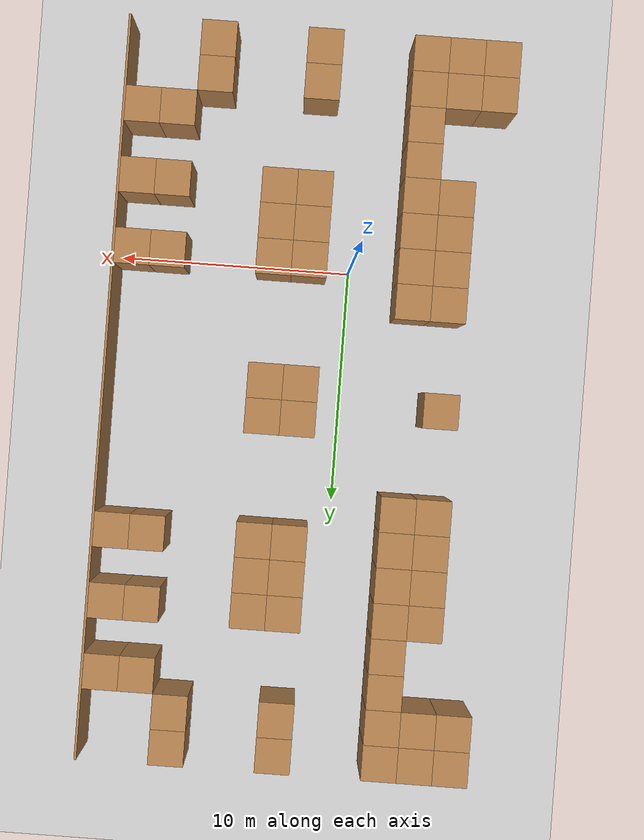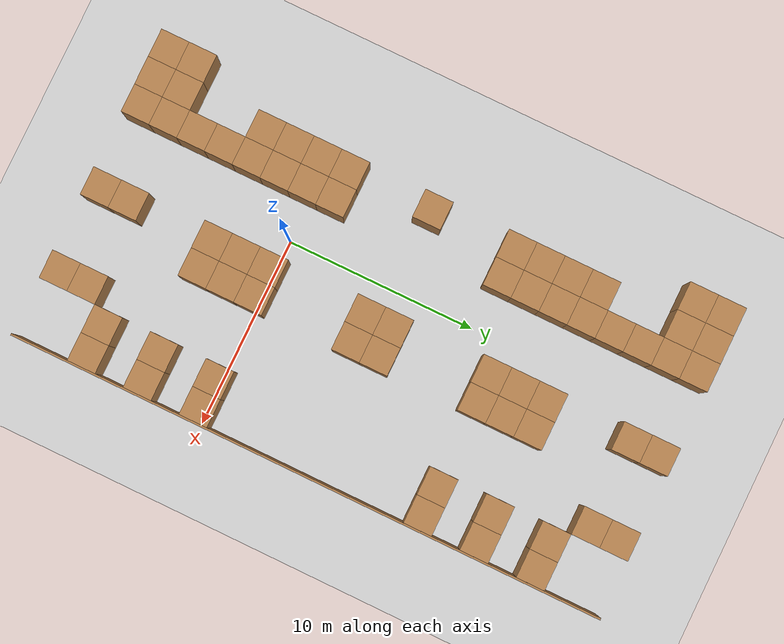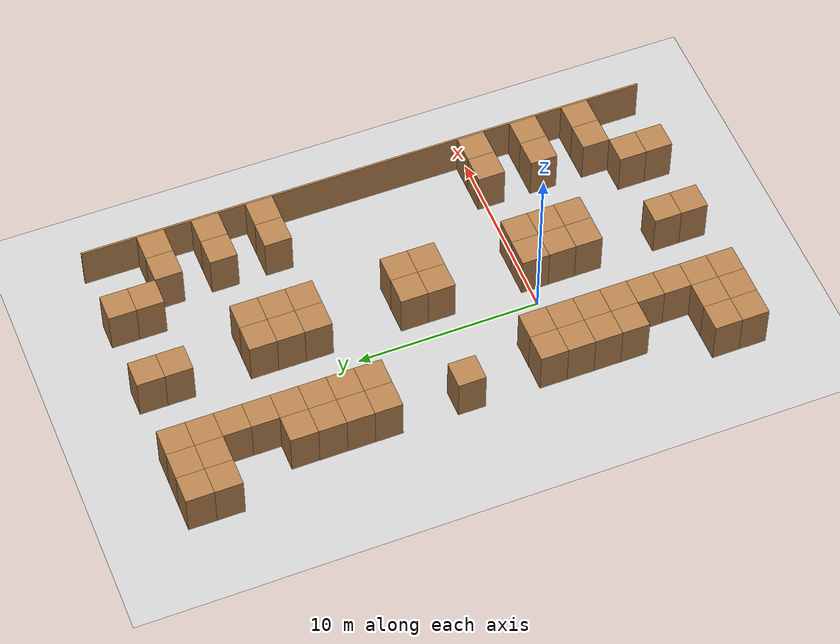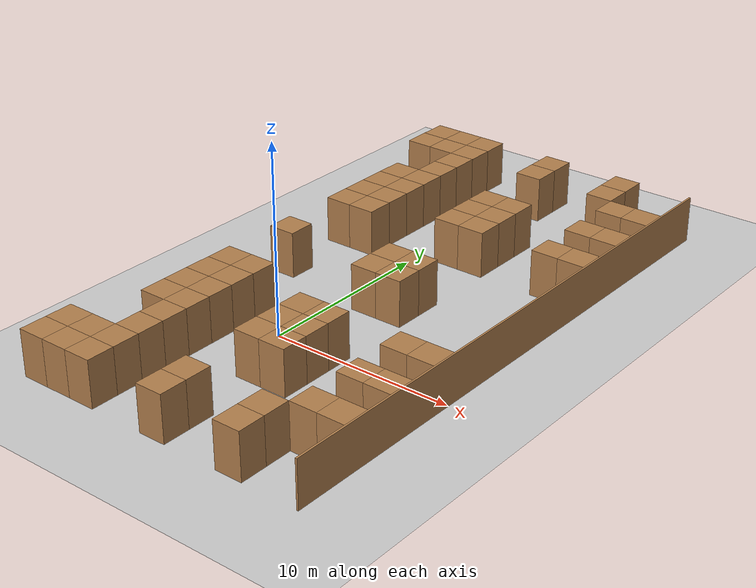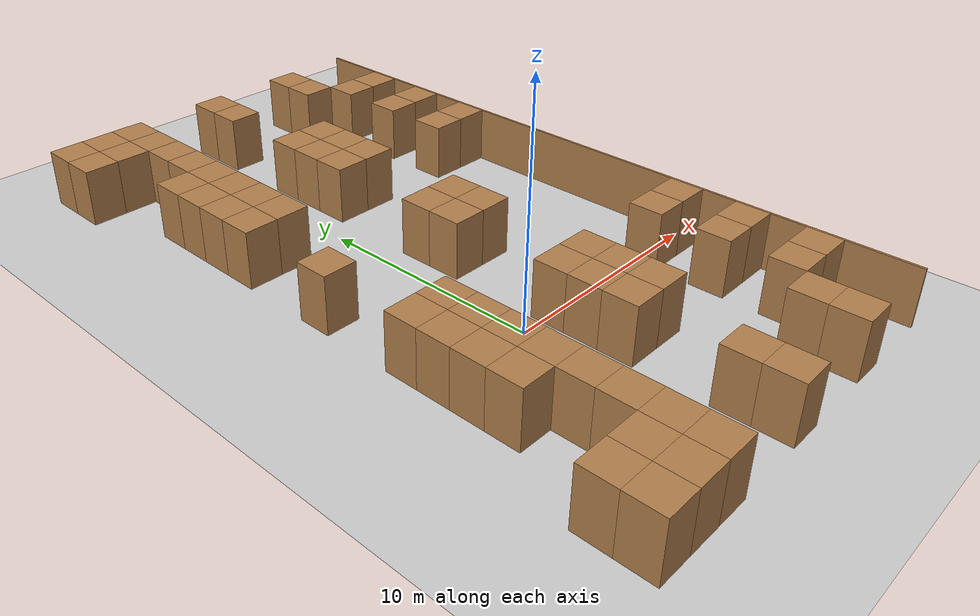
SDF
<sdf version="1.6">
 <world name="default">
  <model name="ground_plane">
   <static>1</static>
   <link name="link">
    <collision name="collision">
     <geometry><plane><normal>0 0 1</normal><size>100 100</size></plane></geometry>
     <surface><friction><ode><mu>100</mu><mu2>50</mu2></ode></friction></surface>
    </collision>
    <visual name="visual">
     <cast_shadows>0</cast_shadows>
     <geometry><plane><normal>0 0 1</normal><size>100 100</size></plane></geometry>
     <material>
      <script><uri>file://media/materials/scripts/gazebo.material</uri><name>Gazebo/Grey</name></script>
     </material>
    </visual>
   </link>
  </model>
  <model name="wall_1.5_1.5_clone_clone">
   <pose>6.25 -7.75 0 0 -0 0</pose>
   <link name="Wall_2">
    <collision name="Wall_2_Collision">
     <geometry><box><size>1.5 1.5 2.5</size></box></geometry>
     <pose>0 0 1.25 0 -0 0</pose>
    </collision>
    <visual name="Wall_2_Visual">
     <pose>0 0 1.25 0 -0 0</pose>
     <geometry><box><size>1.5 1.5 2.5</size></box></geometry>
     <material>
      <script><uri>file://media/materials/scripts/gazebo.material</uri><name>Gazebo/Wood</name></script>
      <ambient>1 1 1 1</ambient>
     </material>
    </visual>
   </link>
   <static>1</static>
  </model>
  <model name="wall_1.5_1.5_clone_clone_0">
   <pose>6.25 -9.25 0 0 -0 0</pose>
   <link name="Wall_2">
    <collision name="Wall_2_Collision">
     <geometry><box><size>1.5 1.5 2.5</size></box></geometry>
     <pose>0 0 1.25 0 -0 0</pose>
    </collision>
    <visual name="Wall_2_Visual">
     <pose>0 0 1.25 0 -0 0</pose>
     <geometry><box><size>1.5 1.5 2.5</size></box></geometry>
     <material>
      <script><uri>file://media/materials/scripts/gazebo.material</uri><name>Gazebo/Wood</name></script>
      <ambient>1 1 1 1</ambient>
     </material>
    </visual>
   </link>
   <static>1</static>
  </model>
  <model name="wall_1.5_1.5_clone_clone_1">
   <pose>7.75 -6.25 0 0 -0 0</pose>
   <link name="Wall_2">
    <collision name="Wall_2_Collision">
     <geometry><box><size>1.5 1.5 2.5</size></box></geometry>
     <pose>0 0 1.25 0 -0 0</pose>
    </collision>
    <visual name="Wall_2_Visual">
     <pose>0 0 1.25 0 -0 0</pose>
     <geometry><box><size>1.5 1.5 2.5</size></box></geometry>
     <material>
      <script><uri>file://media/materials/scripts/gazebo.material</uri><name>Gazebo/Wood</name></script>
      <ambient>1 1 1 1</ambient>
     </material>
    </visual>
   </link>
   <static>1</static>
  </model>
  <model name="wall_1.5_1.5_clone_clone_2">
   <pose>9.25 -6.25 0 0 -0 0</pose>
   <link name="Wall_2">
    <collision name="Wall_2_Collision">
     <geometry><box><size>1.5 1.5 2.5</size></box></geometry>
     <pose>0 0 1.25 0 -0 0</pose>
    </collision>
    <visual name="Wall_2_Visual">
     <pose>0 0 1.25 0 -0 0</pose>
     <geometry><box><size>1.5 1.5 2.5</size></box></geometry>
     <material>
      <script><uri>file://media/materials/scripts/gazebo.material</uri><name>Gazebo/Wood</name></script>
      <ambient>1 1 1 1</ambient>
     </material>
    </visual>
   </link>
   <static>1</static>
  </model>
  <model name="wall_1.5_1.5_0">
   <pose>9.25 -3.25 0 0 -0 0</pose>
   <link name="Wall_2">
    <collision name="Wall_2_Collision">
     <geometry><box><size>1.5 1.5 2.5</size></box></geometry>
     <pose>0 0 1.25 0 -0 0</pose>
    </collision>
    <visual name="Wall_2_Visual">
     <pose>0 0 1.25 0 -0 0</pose>
     <geometry><box><size>1.5 1.5 2.5</size></box></geometry>
     <material>
      <script><uri>file://media/materials/scripts/gazebo.material</uri><name>Gazebo/Wood</name></script>
      <ambient>1 1 1 1</ambient>
     </material>
    </visual>
   </link>
   <static>1</static>
  </model>
  <model name="wall_1.5_1.5_0_clone">
   <pose>7.75 -3.25 0 0 -0 0</pose>
   <link name="Wall_2">
    <collision name="Wall_2_Collision">
     <geometry><box><size>1.5 1.5 2.5</size></box></geometry>
     <pose>0 0 1.25 0 -0 0</pose>
    </collision>
    <visual name="Wall_2_Visual">
     <pose>0 0 1.25 0 -0 0</pose>
     <geometry><box><size>1.5 1.5 2.5</size></box></geometry>
     <material>
      <script><uri>file://media/materials/scripts/gazebo.material</uri><name>Gazebo/Wood</name></script>
      <ambient>1 1 1 1</ambient>
     </material>
    </visual>
   </link>
   <static>1</static>
  </model>
  <model name="wall_1.5_1.5_1">
   <pose>9.25 -0.25 0 0 -0 0</pose>
   <link name="Wall_2">
    <collision name="Wall_2_Collision">
     <geometry><box><size>1.5 1.5 2.5</size></box></geometry>
     <pose>0 0 1.25 0 -0 0</pose>
    </collision>
    <visual name="Wall_2_Visual">
     <pose>0 0 1.25 0 -0 0</pose>
     <geometry><box><size>1.5 1.5 2.5</size></box></geometry>
     <material>
      <script><uri>file://media/materials/scripts/gazebo.material</uri><name>Gazebo/Wood</name></script>
      <ambient>1 1 1 1</ambient>
     </material>
    </visual>
   </link>
   <static>1</static>
  </model>
  <model name="wall_1.5_1.5_1_clone">
   <pose>7.75 -0.25 0 0 -0 0</pose>
   <link name="Wall_2">
    <collision name="Wall_2_Collision">
     <geometry><box><size>1.5 1.5 2.5</size></box></geometry>
     <pose>0 0 1.25 0 -0 0</pose>
    </collision>
    <visual name="Wall_2_Visual">
     <pose>0 0 1.25 0 -0 0</pose>
     <geometry><box><size>1.5 1.5 2.5</size></box></geometry>
     <material>
      <script><uri>file://media/materials/scripts/gazebo.material</uri><name>Gazebo/Wood</name></script>
      <ambient>1 1 1 1</ambient>
     </material>
    </visual>
   </link>
   <static>1</static>
  </model>
  <model name="wall_1.5_1.5_1_clone_clone">
   <pose>9.25 11.75 0 0 -0 0</pose>
   <link name="Wall_2">
    <collision name="Wall_2_Collision">
     <geometry><box><size>1.5 1.5 2.5</size></box></geometry>
     <pose>0 0 1.25 0 -0 0</pose>
    </collision>
    <visual name="Wall_2_Visual">
     <pose>0 0 1.25 0 -0 0</pose>
     <geometry><box><size>1.5 1.5 2.5</size></box></geometry>
     <material>
      <script><uri>file://media/materials/scripts/gazebo.material</uri><name>Gazebo/Wood</name></script>
      <ambient>1 1 1 1</ambient>
     </material>
    </visual>
   </link>
   <static>1</static>
  </model>
  <model name="wall_1.5_1.5_1_clone_clone_clone">
   <pose>7.75 11.75 0 0 -0 0</pose>
   <link name="Wall_2">
    <collision name="Wall_2_Collision">
     <geometry><box><size>1.5 1.5 2.5</size></box></geometry>
     <pose>0 0 1.25 0 -0 0</pose>
    </collision>
    <visual name="Wall_2_Visual">
     <pose>0 0 1.25 0 -0 0</pose>
     <geometry><box><size>1.5 1.5 2.5</size></box></geometry>
     <material>
      <script><uri>file://media/materials/scripts/gazebo.material</uri><name>Gazebo/Wood</name></script>
      <ambient>1 1 1 1</ambient>
     </material>
    </visual>
   </link>
   <static>1</static>
  </model>
  <model name="wall_1.5_1.5_1_clone_clone_clone_0">
   <pose>9.25 14.75 0 0 -0 0</pose>
   <link name="Wall_2">
    <collision name="Wall_2_Collision">
     <geometry><box><size>1.5 1.5 2.5</size></box></geometry>
     <pose>0 0 1.25 0 -0 0</pose>
    </collision>
    <visual name="Wall_2_Visual">
     <pose>0 0 1.25 0 -0 0</pose>
     <geometry><box><size>1.5 1.5 2.5</size></box></geometry>
     <material>
      <script><uri>file://media/materials/scripts/gazebo.material</uri><name>Gazebo/Wood</name></script>
      <ambient>1 1 1 1</ambient>
     </material>
    </visual>
   </link>
   <static>1</static>
  </model>
  <model name="wall_1.5_1.5_1_clone_clone_clone_1">
   <pose>7.75 14.75 0 0 -0 0</pose>
   <link name="Wall_2">
    <collision name="Wall_2_Collision">
     <geometry><box><size>1.5 1.5 2.5</size></box></geometry>
     <pose>0 0 1.25 0 -0 0</pose>
    </collision>
    <visual name="Wall_2_Visual">
     <pose>0 0 1.25 0 -0 0</pose>
     <geometry><box><size>1.5 1.5 2.5</size></box></geometry>
     <material>
      <script><uri>file://media/materials/scripts/gazebo.material</uri><name>Gazebo/Wood</name></script>
      <ambient>1 1 1 1</ambient>
     </material>
    </visual>
   </link>
   <static>1</static>
  </model>
  <model name="wall_1.5_1.5_1_clone_clone_clone_0_clone">
   <pose>9.25 17.75 0 0 -0 0</pose>
   <link name="Wall_2">
    <collision name="Wall_2_Collision">
     <geometry><box><size>1.5 1.5 2.5</size></box></geometry>
     <pose>0 0 1.25 0 -0 0</pose>
    </collision>
    <visual name="Wall_2_Visual">
     <pose>0 0 1.25 0 -0 0</pose>
     <geometry><box><size>1.5 1.5 2.5</size></box></geometry>
     <material>
      <script><uri>file://media/materials/scripts/gazebo.material</uri><name>Gazebo/Wood</name></script>
      <ambient>1 1 1 1</ambient>
     </material>
    </visual>
   </link>
   <static>1</static>
  </model>
  <model name="wall_1.5_1.5_1_clone_clone_clone_0_clone_0">
   <pose>7.75 17.75 0 0 -0 0</pose>
   <link name="Wall_2">
    <collision name="Wall_2_Collision">
     <geometry><box><size>1.5 1.5 2.5</size></box></geometry>
     <pose>0 0 1.25 0 -0 0</pose>
    </collision>
    <visual name="Wall_2_Visual">
     <pose>0 0 1.25 0 -0 0</pose>
     <geometry><box><size>1.5 1.5 2.5</size></box></geometry>
     <material>
      <script><uri>file://media/materials/scripts/gazebo.material</uri><name>Gazebo/Wood</name></script>
      <ambient>1 1 1 1</ambient>
     </material>
    </visual>
   </link>
   <static>1</static>
  </model>
  <model name="wall_1.5_1.5_1_clone_clone_clone_0_clone_0_clone">
   <pose>6.25 19.25 0 0 -0 0</pose>
   <link name="Wall_2">
    <collision name="Wall_2_Collision">
     <geometry><box><size>1.5 1.5 2.5</size></box></geometry>
     <pose>0 0 1.25 0 -0 0</pose>
    </collision>
    <visual name="Wall_2_Visual">
     <pose>0 0 1.25 0 -0 0</pose>
     <geometry><box><size>1.5 1.5 2.5</size></box></geometry>
     <material>
      <script><uri>file://media/materials/scripts/gazebo.material</uri><name>Gazebo/Wood</name></script>
      <ambient>1 1 1 1</ambient>
     </material>
    </visual>
   </link>
   <static>1</static>
  </model>
  <model name="wall_1.5_1.5_1_clone_clone_clone_0_clone_0_clone_0">
   <pose>6.25 20.75 0 0 -0 0</pose>
   <link name="Wall_2">
    <collision name="Wall_2_Collision">
     <geometry><box><size>1.5 1.5 2.5</size></box></geometry>
     <pose>0 0 1.25 0 -0 0</pose>
    </collision>
    <visual name="Wall_2_Visual">
     <pose>0 0 1.25 0 -0 0</pose>
     <geometry><box><size>1.5 1.5 2.5</size></box></geometry>
     <material>
      <script><uri>file://media/materials/scripts/gazebo.material</uri><name>Gazebo/Wood</name></script>
      <ambient>1 1 1 1</ambient>
     </material>
    </visual>
   </link>
   <static>1</static>
  </model>
  <model name="wall_1.5_1.5_clone_clone_clone">
   <pose>3.25 -3.25 0 0 -0 0</pose>
   <link name="Wall_2">
    <collision name="Wall_2_Collision">
     <geometry><box><size>1.5 1.5 2.5</size></box></geometry>
     <pose>0 0 1.25 0 -0 0</pose>
    </collision>
    <visual name="Wall_2_Visual">
     <pose>0 0 1.25 0 -0 0</pose>
     <geometry><box><size>1.5 1.5 2.5</size></box></geometry>
     <material>
      <script><uri>file://media/materials/scripts/gazebo.material</uri><name>Gazebo/Wood</name></script>
      <ambient>1 1 1 1</ambient>
     </material>
    </visual>
   </link>
   <static>1</static>
  </model>
  <model name="wall_1.5_1.5_clone_clone_clone_clone">
   <pose>3.25 -1.75 0 0 -0 0</pose>
   <link name="Wall_2">
    <collision name="Wall_2_Collision">
     <geometry><box><size>1.5 1.5 2.5</size></box></geometry>
     <pose>0 0 1.25 0 -0 0</pose>
    </collision>
    <visual name="Wall_2_Visual">
     <pose>0 0 1.25 0 -0 0</pose>
     <geometry><box><size>1.5 1.5 2.5</size></box></geometry>
     <material>
      <script><uri>file://media/materials/scripts/gazebo.material</uri><name>Gazebo/Wood</name></script>
      <ambient>1 1 1 1</ambient>
     </material>
    </visual>
   </link>
   <static>1</static>
  </model>
  <model name="wall_1.5_1.5_clone_clone_clone_clone_clone">
   <pose>1.75 -0.25 0 0 -0 0</pose>
   <link name="Wall_2">
    <collision name="Wall_2_Collision">
     <geometry><box><size>1.5 1.5 2.5</size></box></geometry>
     <pose>0 0 1.25 0 -0 0</pose>
    </collision>
    <visual name="Wall_2_Visual">
     <pose>0 0 1.25 0 -0 0</pose>
     <geometry><box><size>1.5 1.5 2.5</size></box></geometry>
     <material>
      <script><uri>file://media/materials/scripts/gazebo.material</uri><name>Gazebo/Wood</name></script>
      <ambient>1 1 1 1</ambient>
     </material>
    </visual>
   </link>
   <static>1</static>
  </model>
  <model name="wall_1.5_1.5_clone_clone_clone_clone_0">
   <pose>1.75 -3.25 0 0 -0 0</pose>
   <link name="Wall_2">
    <collision name="Wall_2_Collision">
     <geometry><box><size>1.5 1.5 2.5</size></box></geometry>
     <pose>0 0 1.25 0 -0 0</pose>
    </collision>
    <visual name="Wall_2_Visual">
     <pose>0 0 1.25 0 -0 0</pose>
     <geometry><box><size>1.5 1.5 2.5</size></box></geometry>
     <material>
      <script><uri>file://media/materials/scripts/gazebo.material</uri><name>Gazebo/Wood</name></script>
      <ambient>1 1 1 1</ambient>
     </material>
    </visual>
   </link>
   <static>1</static>
  </model>
  <model name="wall_1.5_1.5_clone_clone_clone_clone_0_clone">
   <pose>1.75 -1.75 0 0 -0 0</pose>
   <link name="Wall_2">
    <collision name="Wall_2_Collision">
     <geometry><box><size>1.5 1.5 2.5</size></box></geometry>
     <pose>0 0 1.25 0 -0 0</pose>
    </collision>
    <visual name="Wall_2_Visual">
     <pose>0 0 1.25 0 -0 0</pose>
     <geometry><box><size>1.5 1.5 2.5</size></box></geometry>
     <material>
      <script><uri>file://media/materials/scripts/gazebo.material</uri><name>Gazebo/Wood</name></script>
      <ambient>1 1 1 1</ambient>
     </material>
    </visual>
   </link>
   <static>1</static>
  </model>
  <model name="wall_1.5_1.5_clone_clone_clone_clone_clone_clone">
   <pose>3.25 -0.25 0 0 -0 0</pose>
   <link name="Wall_2">
    <collision name="Wall_2_Collision">
     <geometry><box><size>1.5 1.5 2.5</size></box></geometry>
     <pose>0 0 1.25 0 -0 0</pose>
    </collision>
    <visual name="Wall_2_Visual">
     <pose>0 0 1.25 0 -0 0</pose>
     <geometry><box><size>1.5 1.5 2.5</size></box></geometry>
     <material>
      <script><uri>file://media/materials/scripts/gazebo.material</uri><name>Gazebo/Wood</name></script>
      <ambient>1 1 1 1</ambient>
     </material>
    </visual>
   </link>
   <static>1</static>
  </model>
  <model name="wall_1.5_1.5_clone_clone_clone_clone_clone_clone_clone">
   <pose>3.25 6.5 0 0 -0 0</pose>
   <link name="Wall_2">
    <collision name="Wall_2_Collision">
     <geometry><box><size>1.5 1.5 2.5</size></box></geometry>
     <pose>0 0 1.25 0 -0 0</pose>
    </collision>
    <visual name="Wall_2_Visual">
     <pose>0 0 1.25 0 -0 0</pose>
     <geometry><box><size>1.5 1.5 2.5</size></box></geometry>
     <material>
      <script><uri>file://media/materials/scripts/gazebo.material</uri><name>Gazebo/Wood</name></script>
      <ambient>1 1 1 1</ambient>
     </material>
    </visual>
   </link>
   <static>1</static>
  </model>
  <model name="wall_1.5_1.5_clone_clone_clone_clone_clone_clone_clone_clone">
   <pose>3.25 5 0 0 -0 0</pose>
   <link name="Wall_2">
    <collision name="Wall_2_Collision">
     <geometry><box><size>1.5 1.5 2.5</size></box></geometry>
     <pose>0 0 1.25 0 -0 0</pose>
    </collision>
    <visual name="Wall_2_Visual">
     <pose>0 0 1.25 0 -0 0</pose>
     <geometry><box><size>1.5 1.5 2.5</size></box></geometry>
     <material>
      <script><uri>file://media/materials/scripts/gazebo.material</uri><name>Gazebo/Wood</name></script>
      <ambient>1 1 1 1</ambient>
     </material>
    </visual>
   </link>
   <static>1</static>
  </model>
  <model name="wall_1.5_1.5_clone_clone_clone_clone_clone_clone_clone_clone_0">
   <pose>1.75 6.5 0 0 -0 0</pose>
   <link name="Wall_2">
    <collision name="Wall_2_Collision">
     <geometry><box><size>1.5 1.5 2.5</size></box></geometry>
     <pose>0 0 1.25 0 -0 0</pose>
    </collision>
    <visual name="Wall_2_Visual">
     <pose>0 0 1.25 0 -0 0</pose>
     <geometry><box><size>1.5 1.5 2.5</size></box></geometry>
     <material>
      <script><uri>file://media/materials/scripts/gazebo.material</uri><name>Gazebo/Wood</name></script>
      <ambient>1 1 1 1</ambient>
     </material>
    </visual>
   </link>
   <static>1</static>
  </model>
  <model name="wall_1.5_1.5_clone_clone_clone_clone_clone_clone_clone_clone_1">
   <pose>1.75 5 0 0 -0 0</pose>
   <link name="Wall_2">
    <collision name="Wall_2_Collision">
     <geometry><box><size>1.5 1.5 2.5</size></box></geometry>
     <pose>0 0 1.25 0 -0 0</pose>
    </collision>
    <visual name="Wall_2_Visual">
     <pose>0 0 1.25 0 -0 0</pose>
     <geometry><box><size>1.5 1.5 2.5</size></box></geometry>
     <material>
      <script><uri>file://media/materials/scripts/gazebo.material</uri><name>Gazebo/Wood</name></script>
      <ambient>1 1 1 1</ambient>
     </material>
    </visual>
   </link>
   <static>1</static>
  </model>
  <model name="wall_1.5_1.5_clone_clone_clone_clone_clone_clone_clone_clone_clone_1">
   <pose>1.75 20.75 0 0 -0 0</pose>
   <link name="Wall_2">
    <collision name="Wall_2_Collision">
     <geometry><box><size>1.5 1.5 2.5</size></box></geometry>
     <pose>0 0 1.25 0 -0 0</pose>
    </collision>
    <visual name="Wall_2_Visual">
     <pose>0 0 1.25 0 -0 0</pose>
     <geometry><box><size>1.5 1.5 2.5</size></box></geometry>
     <material>
      <script><uri>file://media/materials/scripts/gazebo.material</uri><name>Gazebo/Wood</name></script>
      <ambient>1 1 1 1</ambient>
     </material>
    </visual>
   </link>
   <static>1</static>
  </model>
  <model name="wall_1.5_1.5_4">
   <pose>1.75 -9.25 0 0 -0 0</pose>
   <link name="Wall_2">
    <collision name="Wall_2_Collision">
     <geometry><box><size>1.5 1.5 2.5</size></box></geometry>
     <pose>0 0 1.25 0 -0 0</pose>
    </collision>
    <visual name="Wall_2_Visual">
     <pose>0 0 1.25 0 -0 0</pose>
     <geometry><box><size>1.5 1.5 2.5</size></box></geometry>
     <material>
      <script><uri>file://media/materials/scripts/gazebo.material</uri><name>Gazebo/Wood</name></script>
      <ambient>1 1 1 1</ambient>
     </material>
    </visual>
   </link>
   <static>1</static>
  </model>
  <model name="wall_1.5_1.5_4_clone">
   <pose>-2.75 -9.25 0 0 -0 0</pose>
   <link name="Wall_2">
    <collision name="Wall_2_Collision">
     <geometry><box><size>1.5 1.5 2.5</size></box></geometry>
     <pose>0 0 1.25 0 -0 0</pose>
    </collision>
    <visual name="Wall_2_Visual">
     <pose>0 0 1.25 0 -0 0</pose>
     <geometry><box><size>1.5 1.5 2.5</size></box></geometry>
     <material>
      <script><uri>file://media/materials/scripts/gazebo.material</uri><name>Gazebo/Wood</name></script>
      <ambient>1 1 1 1</ambient>
     </material>
    </visual>
   </link>
   <static>1</static>
  </model>
  <model name="wall_1.5_1.5_4_clone_clone">
   <pose>-2.75 -7.75 0 0 -0 0</pose>
   <link name="Wall_2">
    <collision name="Wall_2_Collision">
     <geometry><box><size>1.5 1.5 2.5</size></box></geometry>
     <pose>0 0 1.25 0 -0 0</pose>
    </collision>
    <visual name="Wall_2_Visual">
     <pose>0 0 1.25 0 -0 0</pose>
     <geometry><box><size>1.5 1.5 2.5</size></box></geometry>
     <material>
      <script><uri>file://media/materials/scripts/gazebo.material</uri><name>Gazebo/Wood</name></script>
      <ambient>1 1 1 1</ambient>
     </material>
    </visual>
   </link>
   <static>1</static>
  </model>
  <model name="wall_1.5_1.5_4_clone_clone_0">
   <pose>-2.75 -6.25 0 0 -0 0</pose>
   <link name="Wall_2">
    <collision name="Wall_2_Collision">
     <geometry><box><size>1.5 1.5 2.5</size></box></geometry>
     <pose>0 0 1.25 0 -0 0</pose>
    </collision>
    <visual name="Wall_2_Visual">
     <pose>0 0 1.25 0 -0 0</pose>
     <geometry><box><size>1.5 1.5 2.5</size></box></geometry>
     <material>
      <script><uri>file://media/materials/scripts/gazebo.material</uri><name>Gazebo/Wood</name></script>
      <ambient>1 1 1 1</ambient>
     </material>
    </visual>
   </link>
   <static>1</static>
  </model>
  <model name="wall_1.5_1.5_4_clone_clone_1">
   <pose>-2.75 -4.75 0 0 -0 0</pose>
   <link name="Wall_2">
    <collision name="Wall_2_Collision">
     <geometry><box><size>1.5 1.5 2.5</size></box></geometry>
     <pose>0 0 1.25 0 -0 0</pose>
    </collision>
    <visual name="Wall_2_Visual">
     <pose>0 0 1.25 0 -0 0</pose>
     <geometry><box><size>1.5 1.5 2.5</size></box></geometry>
     <material>
      <script><uri>file://media/materials/scripts/gazebo.material</uri><name>Gazebo/Wood</name></script>
      <ambient>1 1 1 1</ambient>
     </material>
    </visual>
   </link>
   <static>1</static>
  </model>
  <model name="wall_1.5_1.5_4_clone_clone_2">
   <pose>-2.75 -3.25 0 0 -0 0</pose>
   <link name="Wall_2">
    <collision name="Wall_2_Collision">
     <geometry><box><size>1.5 1.5 2.5</size></box></geometry>
     <pose>0 0 1.25 0 -0 0</pose>
    </collision>
    <visual name="Wall_2_Visual">
     <pose>0 0 1.25 0 -0 0</pose>
     <geometry><box><size>1.5 1.5 2.5</size></box></geometry>
     <material>
      <script><uri>file://media/materials/scripts/gazebo.material</uri><name>Gazebo/Wood</name></script>
      <ambient>1 1 1 1</ambient>
     </material>
    </visual>
   </link>
   <static>1</static>
  </model>
  <model name="wall_1.5_1.5_4_clone_clone_3">
   <pose>-2.75 -1.75 0 0 -0 0</pose>
   <link name="Wall_2">
    <collision name="Wall_2_Collision">
     <geometry><box><size>1.5 1.5 2.5</size></box></geometry>
     <pose>0 0 1.25 0 -0 0</pose>
    </collision>
    <visual name="Wall_2_Visual">
     <pose>0 0 1.25 0 -0 0</pose>
     <geometry><box><size>1.5 1.5 2.5</size></box></geometry>
     <material>
      <script><uri>file://media/materials/scripts/gazebo.material</uri><name>Gazebo/Wood</name></script>
      <ambient>1 1 1 1</ambient>
     </material>
    </visual>
   </link>
   <static>1</static>
  </model>
  <model name="wall_1.5_1.5_4_clone_clone_4">
   <pose>-2.75 -0.25 0 0 -0 0</pose>
   <link name="Wall_2">
    <collision name="Wall_2_Collision">
     <geometry><box><size>1.5 1.5 2.5</size></box></geometry>
     <pose>0 0 1.25 0 -0 0</pose>
    </collision>
    <visual name="Wall_2_Visual">
     <pose>0 0 1.25 0 -0 0</pose>
     <geometry><box><size>1.5 1.5 2.5</size></box></geometry>
     <material>
      <script><uri>file://media/materials/scripts/gazebo.material</uri><name>Gazebo/Wood</name></script>
      <ambient>1 1 1 1</ambient>
     </material>
    </visual>
   </link>
   <static>1</static>
  </model>
  <model name="wall_1.5_1.5_4_clone_clone_4_clone">
   <pose>-4.25 -0.25 0 0 -0 0</pose>
   <link name="Wall_2">
    <collision name="Wall_2_Collision">
     <geometry><box><size>1.5 1.5 2.5</size></box></geometry>
     <pose>0 0 1.25 0 -0 0</pose>
    </collision>
    <visual name="Wall_2_Visual">
     <pose>0 0 1.25 0 -0 0</pose>
     <geometry><box><size>1.5 1.5 2.5</size></box></geometry>
     <material>
      <script><uri>file://media/materials/scripts/gazebo.material</uri><name>Gazebo/Wood</name></script>
      <ambient>1 1 1 1</ambient>
     </material>
    </visual>
   </link>
   <static>1</static>
  </model>
  <model name="wall_1.5_1.5_4_clone_clone_4_clone_0">
   <pose>-4.25 -1.75 0 0 -0 0</pose>
   <link name="Wall_2">
    <collision name="Wall_2_Collision">
     <geometry><box><size>1.5 1.5 2.5</size></box></geometry>
     <pose>0 0 1.25 0 -0 0</pose>
    </collision>
    <visual name="Wall_2_Visual">
     <pose>0 0 1.25 0 -0 0</pose>
     <geometry><box><size>1.5 1.5 2.5</size></box></geometry>
     <material>
      <script><uri>file://media/materials/scripts/gazebo.material</uri><name>Gazebo/Wood</name></script>
      <ambient>1 1 1 1</ambient>
     </material>
    </visual>
   </link>
   <static>1</static>
  </model>
  <model name="wall_1.5_1.5_4_clone_clone_4_clone_1">
   <pose>-4.25 -3.25 0 0 -0 0</pose>
   <link name="Wall_2">
    <collision name="Wall_2_Collision">
     <geometry><box><size>1.5 1.5 2.5</size></box></geometry>
     <pose>0 0 1.25 0 -0 0</pose>
    </collision>
    <visual name="Wall_2_Visual">
     <pose>0 0 1.25 0 -0 0</pose>
     <geometry><box><size>1.5 1.5 2.5</size></box></geometry>
     <material>
      <script><uri>file://media/materials/scripts/gazebo.material</uri><name>Gazebo/Wood</name></script>
      <ambient>1 1 1 1</ambient>
     </material>
    </visual>
   </link>
   <static>1</static>
  </model>
  <model name="wall_1.5_1.5_4_clone_clone_4_clone_2">
   <pose>-4.25 -7.75 0 0 -0 0</pose>
   <link name="Wall_2">
    <collision name="Wall_2_Collision">
     <geometry><box><size>1.5 1.5 2.5</size></box></geometry>
     <pose>0 0 1.25 0 -0 0</pose>
    </collision>
    <visual name="Wall_2_Visual">
     <pose>0 0 1.25 0 -0 0</pose>
     <geometry><box><size>1.5 1.5 2.5</size></box></geometry>
     <material>
      <script><uri>file://media/materials/scripts/gazebo.material</uri><name>Gazebo/Wood</name></script>
      <ambient>1 1 1 1</ambient>
     </material>
    </visual>
   </link>
   <static>1</static>
  </model>
  <model name="wall_1.5_1.5_4_clone_clone_4_clone_3">
   <pose>-4.25 -9.25 0 0 -0 0</pose>
   <link name="Wall_2">
    <collision name="Wall_2_Collision">
     <geometry><box><size>1.5 1.5 2.5</size></box></geometry>
     <pose>0 0 1.25 0 -0 0</pose>
    </collision>
    <visual name="Wall_2_Visual">
     <pose>0 0 1.25 0 -0 0</pose>
     <geometry><box><size>1.5 1.5 2.5</size></box></geometry>
     <material>
      <script><uri>file://media/materials/scripts/gazebo.material</uri><name>Gazebo/Wood</name></script>
      <ambient>1 1 1 1</ambient>
     </material>
    </visual>
   </link>
   <static>1</static>
  </model>
  <model name="wall_1.5_1.5_5">
   <pose>-5.75 -9.25 0 0 -0 0</pose>
   <link name="Wall_2">
    <collision name="Wall_2_Collision">
     <geometry><box><size>1.5 1.5 2.5</size></box></geometry>
     <pose>0 0 1.25 0 -0 0</pose>
    </collision>
    <visual name="Wall_2_Visual">
     <pose>0 0 1.25 0 -0 0</pose>
     <geometry><box><size>1.5 1.5 2.5</size></box></geometry>
     <material>
      <script><uri>file://media/materials/scripts/gazebo.material</uri><name>Gazebo/Wood</name></script>
      <ambient>1 1 1 1</ambient>
     </material>
    </visual>
   </link>
   <static>1</static>
  </model>
  <model name="wall_1.5_1.5_4_clone_clone_4_clone_4">
   <pose>-5.75 -7.75 0 0 -0 0</pose>
   <link name="Wall_2">
    <collision name="Wall_2_Collision">
     <geometry><box><size>1.5 1.5 2.5</size></box></geometry>
     <pose>0 0 1.25 0 -0 0</pose>
    </collision>
    <visual name="Wall_2_Visual">
     <pose>0 0 1.25 0 -0 0</pose>
     <geometry><box><size>1.5 1.5 2.5</size></box></geometry>
     <material>
      <script><uri>file://media/materials/scripts/gazebo.material</uri><name>Gazebo/Wood</name></script>
      <ambient>1 1 1 1</ambient>
     </material>
    </visual>
   </link>
   <static>1</static>
  </model>
  <model name="wall_1.5_1.5_4_clone_clone_4_clone_9">
   <pose>-2.75 1.25 0 0 -0 0</pose>
   <link name="Wall_2">
    <collision name="Wall_2_Collision">
     <geometry><box><size>1.5 1.5 2.5</size></box></geometry>
     <pose>0 0 1.25 0 -0 0</pose>
    </collision>
    <visual name="Wall_2_Visual">
     <pose>0 0 1.25 0 -0 0</pose>
     <geometry><box><size>1.5 1.5 2.5</size></box></geometry>
     <material>
      <script><uri>file://media/materials/scripts/gazebo.material</uri><name>Gazebo/Wood</name></script>
      <ambient>1 1 1 1</ambient>
     </material>
    </visual>
   </link>
   <static>1</static>
  </model>
  <model name="wall_1.5_1.5_4_clone_clone_4_clone_10">
   <pose>-4.25 1.25 0 0 -0 0</pose>
   <link name="Wall_2">
    <collision name="Wall_2_Collision">
     <geometry><box><size>1.5 1.5 2.5</size></box></geometry>
     <pose>0 0 1.25 0 -0 0</pose>
    </collision>
    <visual name="Wall_2_Visual">
     <pose>0 0 1.25 0 -0 0</pose>
     <geometry><box><size>1.5 1.5 2.5</size></box></geometry>
     <material>
      <script><uri>file://media/materials/scripts/gazebo.material</uri><name>Gazebo/Wood</name></script>
      <ambient>1 1 1 1</ambient>
     </material>
    </visual>
   </link>
   <static>1</static>
  </model>
  <model name="wall_1.5_1.5_4_clone_clone_4_clone_9_clone_4">
   <pose>-2.75 10.25 0 0 -0 0</pose>
   <link name="Wall_2">
    <collision name="Wall_2_Collision">
     <geometry><box><size>1.5 1.5 2.5</size></box></geometry>
     <pose>0 0 1.25 0 -0 0</pose>
    </collision>
    <visual name="Wall_2_Visual">
     <pose>0 0 1.25 0 -0 0</pose>
     <geometry><box><size>1.5 1.5 2.5</size></box></geometry>
     <material>
      <script><uri>file://media/materials/scripts/gazebo.material</uri><name>Gazebo/Wood</name></script>
      <ambient>1 1 1 1</ambient>
     </material>
    </visual>
   </link>
   <static>1</static>
  </model>
  <model name="wall_1.5_1.5_4_clone_clone_4_clone_9_clone_5">
   <pose>-2.75 11.75 0 0 -0 0</pose>
   <link name="Wall_2">
    <collision name="Wall_2_Collision">
     <geometry><box><size>1.5 1.5 2.5</size></box></geometry>
     <pose>0 0 1.25 0 -0 0</pose>
    </collision>
    <visual name="Wall_2_Visual">
     <pose>0 0 1.25 0 -0 0</pose>
     <geometry><box><size>1.5 1.5 2.5</size></box></geometry>
     <material>
      <script><uri>file://media/materials/scripts/gazebo.material</uri><name>Gazebo/Wood</name></script>
      <ambient>1 1 1 1</ambient>
     </material>
    </visual>
   </link>
   <static>1</static>
  </model>
  <model name="wall_1.5_1.5_4_clone_clone_4_clone_9_clone_5_clone">
   <pose>-2.75 13.25 0 0 -0 0</pose>
   <link name="Wall_2">
    <collision name="Wall_2_Collision">
     <geometry><box><size>1.5 1.5 2.5</size></box></geometry>
     <pose>0 0 1.25 0 -0 0</pose>
    </collision>
    <visual name="Wall_2_Visual">
     <pose>0 0 1.25 0 -0 0</pose>
     <geometry><box><size>1.5 1.5 2.5</size></box></geometry>
     <material>
      <script><uri>file://media/materials/scripts/gazebo.material</uri><name>Gazebo/Wood</name></script>
      <ambient>1 1 1 1</ambient>
     </material>
    </visual>
   </link>
   <static>1</static>
  </model>
  <model name="wall_1.5_1.5_4_clone_clone_4_clone_9_clone_5_clone_0">
   <pose>-2.75 14.75 0 0 -0 0</pose>
   <link name="Wall_2">
    <collision name="Wall_2_Collision">
     <geometry><box><size>1.5 1.5 2.5</size></box></geometry>
     <pose>0 0 1.25 0 -0 0</pose>
    </collision>
    <visual name="Wall_2_Visual">
     <pose>0 0 1.25 0 -0 0</pose>
     <geometry><box><size>1.5 1.5 2.5</size></box></geometry>
     <material>
      <script><uri>file://media/materials/scripts/gazebo.material</uri><name>Gazebo/Wood</name></script>
      <ambient>1 1 1 1</ambient>
     </material>
    </visual>
   </link>
   <static>1</static>
  </model>
  <model name="wall_1.5_1.5_4_clone_clone_4_clone_9_clone_5_clone_1">
   <pose>-2.75 16.25 0 0 -0 0</pose>
   <link name="Wall_2">
    <collision name="Wall_2_Collision">
     <geometry><box><size>1.5 1.5 2.5</size></box></geometry>
     <pose>0 0 1.25 0 -0 0</pose>
    </collision>
    <visual name="Wall_2_Visual">
     <pose>0 0 1.25 0 -0 0</pose>
     <geometry><box><size>1.5 1.5 2.5</size></box></geometry>
     <material>
      <script><uri>file://media/materials/scripts/gazebo.material</uri><name>Gazebo/Wood</name></script>
      <ambient>1 1 1 1</ambient>
     </material>
    </visual>
   </link>
   <static>1</static>
  </model>
  <model name="wall_1.5_1.5_4_clone_clone_4_clone_9_clone_5_clone_2">
   <pose>-2.75 17.75 0 0 -0 0</pose>
   <link name="Wall_2">
    <collision name="Wall_2_Collision">
     <geometry><box><size>1.5 1.5 2.5</size></box></geometry>
     <pose>0 0 1.25 0 -0 0</pose>
    </collision>
    <visual name="Wall_2_Visual">
     <pose>0 0 1.25 0 -0 0</pose>
     <geometry><box><size>1.5 1.5 2.5</size></box></geometry>
     <material>
      <script><uri>file://media/materials/scripts/gazebo.material</uri><name>Gazebo/Wood</name></script>
      <ambient>1 1 1 1</ambient>
     </material>
    </visual>
   </link>
   <static>1</static>
  </model>
  <model name="wall_1.5_1.5_4_clone_clone_4_clone_9_clone_5_clone_3">
   <pose>-2.75 19.25 0 0 -0 0</pose>
   <link name="Wall_2">
    <collision name="Wall_2_Collision">
     <geometry><box><size>1.5 1.5 2.5</size></box></geometry>
     <pose>0 0 1.25 0 -0 0</pose>
    </collision>
    <visual name="Wall_2_Visual">
     <pose>0 0 1.25 0 -0 0</pose>
     <geometry><box><size>1.5 1.5 2.5</size></box></geometry>
     <material>
      <script><uri>file://media/materials/scripts/gazebo.material</uri><name>Gazebo/Wood</name></script>
      <ambient>1 1 1 1</ambient>
     </material>
    </visual>
   </link>
   <static>1</static>
  </model>
  <model name="wall_1.5_1.5_4_clone_clone_4_clone_9_clone_5_clone_4">
   <pose>-2.75 20.75 0 0 -0 0</pose>
   <link name="Wall_2">
    <collision name="Wall_2_Collision">
     <geometry><box><size>1.5 1.5 2.5</size></box></geometry>
     <pose>0 0 1.25 0 -0 0</pose>
    </collision>
    <visual name="Wall_2_Visual">
     <pose>0 0 1.25 0 -0 0</pose>
     <geometry><box><size>1.5 1.5 2.5</size></box></geometry>
     <material>
      <script><uri>file://media/materials/scripts/gazebo.material</uri><name>Gazebo/Wood</name></script>
      <ambient>1 1 1 1</ambient>
     </material>
    </visual>
   </link>
   <static>1</static>
  </model>
  <model name="wall_1.5_1.5_clone_clone_clone_clone_clone_clone_clone_clone_clone_1_clone">
   <pose>-4.25 10.25 0 0 -0 0</pose>
   <link name="Wall_2">
    <collision name="Wall_2_Collision">
     <geometry><box><size>1.5 1.5 2.5</size></box></geometry>
     <pose>0 0 1.25 0 -0 0</pose>
    </collision>
    <visual name="Wall_2_Visual">
     <pose>0 0 1.25 0 -0 0</pose>
     <geometry><box><size>1.5 1.5 2.5</size></box></geometry>
     <material>
      <script><uri>file://media/materials/scripts/gazebo.material</uri><name>Gazebo/Wood</name></script>
      <ambient>1 1 1 1</ambient>
     </material>
    </visual>
   </link>
   <static>1</static>
  </model>
  <model name="wall_1.5_1.5_clone_clone_clone_clone_clone_clone_clone_clone_clone_1_clone_0">
   <pose>-4.25 11.75 0 0 -0 0</pose>
   <link name="Wall_2">
    <collision name="Wall_2_Collision">
     <geometry><box><size>1.5 1.5 2.5</size></box></geometry>
     <pose>0 0 1.25 0 -0 0</pose>
    </collision>
    <visual name="Wall_2_Visual">
     <pose>0 0 1.25 0 -0 0</pose>
     <geometry><box><size>1.5 1.5 2.5</size></box></geometry>
     <material>
      <script><uri>file://media/materials/scripts/gazebo.material</uri><name>Gazebo/Wood</name></script>
      <ambient>1 1 1 1</ambient>
     </material>
    </visual>
   </link>
   <static>1</static>
  </model>
  <model name="wall_1.5_1.5_clone_clone_clone_clone_clone_clone_clone_clone_clone_1_clone_1">
   <pose>-4.25 13.25 0 0 -0 0</pose>
   <link name="Wall_2">
    <collision name="Wall_2_Collision">
     <geometry><box><size>1.5 1.5 2.5</size></box></geometry>
     <pose>0 0 1.25 0 -0 0</pose>
    </collision>
    <visual name="Wall_2_Visual">
     <pose>0 0 1.25 0 -0 0</pose>
     <geometry><box><size>1.5 1.5 2.5</size></box></geometry>
     <material>
      <script><uri>file://media/materials/scripts/gazebo.material</uri><name>Gazebo/Wood</name></script>
      <ambient>1 1 1 1</ambient>
     </material>
    </visual>
   </link>
   <static>1</static>
  </model>
  <model name="wall_1.5_1.5_clone_clone_clone_clone_clone_clone_clone_clone_clone_1_clone_2">
   <pose>-4.25 14.75 0 0 -0 0</pose>
   <link name="Wall_2">
    <collision name="Wall_2_Collision">
     <geometry><box><size>1.5 1.5 2.5</size></box></geometry>
     <pose>0 0 1.25 0 -0 0</pose>
    </collision>
    <visual name="Wall_2_Visual">
     <pose>0 0 1.25 0 -0 0</pose>
     <geometry><box><size>1.5 1.5 2.5</size></box></geometry>
     <material>
      <script><uri>file://media/materials/scripts/gazebo.material</uri><name>Gazebo/Wood</name></script>
      <ambient>1 1 1 1</ambient>
     </material>
    </visual>
   </link>
   <static>1</static>
  </model>
  <model name="wall_1.5_1.5_clone_clone_clone_clone_clone_clone_clone_clone_clone_1_clone_3">
   <pose>-4.25 19.25 0 0 -0 0</pose>
   <link name="Wall_2">
    <collision name="Wall_2_Collision">
     <geometry><box><size>1.5 1.5 2.5</size></box></geometry>
     <pose>0 0 1.25 0 -0 0</pose>
    </collision>
    <visual name="Wall_2_Visual">
     <pose>0 0 1.25 0 -0 0</pose>
     <geometry><box><size>1.5 1.5 2.5</size></box></geometry>
     <material>
      <script><uri>file://media/materials/scripts/gazebo.material</uri><name>Gazebo/Wood</name></script>
      <ambient>1 1 1 1</ambient>
     </material>
    </visual>
   </link>
   <static>1</static>
  </model>
  <model name="wall_1.5_1.5_clone_clone_clone_clone_clone_clone_clone_clone_clone_1_clone_4">
   <pose>-4.25 20.75 0 0 -0 0</pose>
   <link name="Wall_2">
    <collision name="Wall_2_Collision">
     <geometry><box><size>1.5 1.5 2.5</size></box></geometry>
     <pose>0 0 1.25 0 -0 0</pose>
    </collision>
    <visual name="Wall_2_Visual">
     <pose>0 0 1.25 0 -0 0</pose>
     <geometry><box><size>1.5 1.5 2.5</size></box></geometry>
     <material>
      <script><uri>file://media/materials/scripts/gazebo.material</uri><name>Gazebo/Wood</name></script>
      <ambient>1 1 1 1</ambient>
     </material>
    </visual>
   </link>
   <static>1</static>
  </model>
  <model name="wall_1.5_1.5_clone_clone_clone_clone_clone_clone_clone_clone_clone_1_clone_5">
   <pose>-5.75 19.25 0 0 -0 0</pose>
   <link name="Wall_2">
    <collision name="Wall_2_Collision">
     <geometry><box><size>1.5 1.5 2.5</size></box></geometry>
     <pose>0 0 1.25 0 -0 0</pose>
    </collision>
    <visual name="Wall_2_Visual">
     <pose>0 0 1.25 0 -0 0</pose>
     <geometry><box><size>1.5 1.5 2.5</size></box></geometry>
     <material>
      <script><uri>file://media/materials/scripts/gazebo.material</uri><name>Gazebo/Wood</name></script>
      <ambient>1 1 1 1</ambient>
     </material>
    </visual>
   </link>
   <static>1</static>
  </model>
  <model name="wall_1.5_1.5_clone_clone_clone_clone_clone_clone_clone_clone_clone_1_clone_14">
   <pose>-5.75 20.75 0 0 -0 0</pose>
   <link name="Wall_2">
    <collision name="Wall_2_Collision">
     <geometry><box><size>1.5 1.5 2.5</size></box></geometry>
     <pose>0 0 1.25 0 -0 0</pose>
    </collision>
    <visual name="Wall_2_Visual">
     <pose>0 0 1.25 0 -0 0</pose>
     <geometry><box><size>1.5 1.5 2.5</size></box></geometry>
     <material>
      <script><uri>file://media/materials/scripts/gazebo.material</uri><name>Gazebo/Wood</name></script>
      <ambient>1 1 1 1</ambient>
     </material>
    </visual>
   </link>
   <static>1</static>
  </model>
  <model name="wall_1.5_1.5_4_clone_clone_4_clone_9_clone_1">
   <pose>-4.25 5.75 0 0 -0 0</pose>
   <link name="Wall_2">
    <collision name="Wall_2_Collision">
     <geometry><box><size>1.5 1.5 2.5</size></box></geometry>
     <pose>0 0 1.25 0 -0 0</pose>
    </collision>
    <visual name="Wall_2_Visual">
     <pose>0 0 1.25 0 -0 0</pose>
     <geometry><box><size>1.5 1.5 2.5</size></box></geometry>
     <material>
      <script><uri>file://media/materials/scripts/gazebo.material</uri><name>Gazebo/Wood</name></script>
      <ambient>1 1 1 1</ambient>
     </material>
    </visual>
   </link>
   <static>1</static>
  </model>
  <model name="wall_1.5_1.5_4_clone_clone_4_clone_13_clone_0_clone_clone_clone_4">
   <pose>1.75 14.75 0 0 -0 0</pose>
   <link name="Wall_2">
    <collision name="Wall_2_Collision">
     <geometry><box><size>1.5 1.5 2.5</size></box></geometry>
     <pose>0 0 1.25 0 -0 0</pose>
    </collision>
    <visual name="Wall_2_Visual">
     <pose>0 0 1.25 0 -0 0</pose>
     <geometry><box><size>1.5 1.5 2.5</size></box></geometry>
     <material>
      <script><uri>file://media/materials/scripts/gazebo.material</uri><name>Gazebo/Wood</name></script>
      <ambient>1 1 1 1</ambient>
     </material>
    </visual>
   </link>
   <static>1</static>
  </model>
  <model name="wall_1.5_1.5_4_clone_clone_4_clone_13_clone_0_clone_clone_clone_7">
   <pose>1.75 13.25 0 0 -0 0</pose>
   <link name="Wall_2">
    <collision name="Wall_2_Collision">
     <geometry><box><size>1.5 1.5 2.5</size></box></geometry>
     <pose>0 0 1.25 0 -0 0</pose>
    </collision>
    <visual name="Wall_2_Visual">
     <pose>0 0 1.25 0 -0 0</pose>
     <geometry><box><size>1.5 1.5 2.5</size></box></geometry>
     <material>
      <script><uri>file://media/materials/scripts/gazebo.material</uri><name>Gazebo/Wood</name></script>
      <ambient>1 1 1 1</ambient>
     </material>
    </visual>
   </link>
   <static>1</static>
  </model>
  <model name="wall_1.5_1.5_4_clone_clone_4_clone_13_clone_0_clone_clone_clone_8">
   <pose>1.75 11.75 0 0 -0 0</pose>
   <link name="Wall_2">
    <collision name="Wall_2_Collision">
     <geometry><box><size>1.5 1.5 2.5</size></box></geometry>
     <pose>0 0 1.25 0 -0 0</pose>
    </collision>
    <visual name="Wall_2_Visual">
     <pose>0 0 1.25 0 -0 0</pose>
     <geometry><box><size>1.5 1.5 2.5</size></box></geometry>
     <material>
      <script><uri>file://media/materials/scripts/gazebo.material</uri><name>Gazebo/Wood</name></script>
      <ambient>1 1 1 1</ambient>
     </material>
    </visual>
   </link>
   <static>1</static>
  </model>
  <model name="wall_1.5_1.5_4_clone_clone_4_clone_13_clone_0_clone_clone_clone_9">
   <pose>3.25 11.75 0 0 -0 0</pose>
   <link name="Wall_2">
    <collision name="Wall_2_Collision">
     <geometry><box><size>1.5 1.5 2.5</size></box></geometry>
     <pose>0 0 1.25 0 -0 0</pose>
    </collision>
    <visual name="Wall_2_Visual">
     <pose>0 0 1.25 0 -0 0</pose>
     <geometry><box><size>1.5 1.5 2.5</size></box></geometry>
     <material>
      <script><uri>file://media/materials/scripts/gazebo.material</uri><name>Gazebo/Wood</name></script>
      <ambient>1 1 1 1</ambient>
     </material>
    </visual>
   </link>
   <static>1</static>
  </model>
  <model name="wall_1.5_1.5_4_clone_clone_4_clone_13_clone_0_clone_clone_clone_10">
   <pose>3.25 13.25 0 0 -0 0</pose>
   <link name="Wall_2">
    <collision name="Wall_2_Collision">
     <geometry><box><size>1.5 1.5 2.5</size></box></geometry>
     <pose>0 0 1.25 0 -0 0</pose>
    </collision>
    <visual name="Wall_2_Visual">
     <pose>0 0 1.25 0 -0 0</pose>
     <geometry><box><size>1.5 1.5 2.5</size></box></geometry>
     <material>
      <script><uri>file://media/materials/scripts/gazebo.material</uri><name>Gazebo/Wood</name></script>
      <ambient>1 1 1 1</ambient>
     </material>
    </visual>
   </link>
   <static>1</static>
  </model>
  <model name="wall_1.5_1.5_4_clone_clone_4_clone_13_clone_0_clone_clone_clone_11">
   <pose>3.25 14.75 0 0 -0 0</pose>
   <link name="Wall_2">
    <collision name="Wall_2_Collision">
     <geometry><box><size>1.5 1.5 2.5</size></box></geometry>
     <pose>0 0 1.25 0 -0 0</pose>
    </collision>
    <visual name="Wall_2_Visual">
     <pose>0 0 1.25 0 -0 0</pose>
     <geometry><box><size>1.5 1.5 2.5</size></box></geometry>
     <material>
      <script><uri>file://media/materials/scripts/gazebo.material</uri><name>Gazebo/Wood</name></script>
      <ambient>1 1 1 1</ambient>
     </material>
    </visual>
   </link>
   <static>1</static>
  </model>
  <model name="wall_1.5_1.5_clone_clone_clone_clone_clone_clone_clone_clone_clone_1_clone_21">
   <pose>1.75 19.25 0 0 -0 0</pose>
   <link name="Wall_2">
    <collision name="Wall_2_Collision">
     <geometry><box><size>1.5 1.5 2.5</size></box></geometry>
     <pose>0 0 1.25 0 -0 0</pose>
    </collision>
    <visual name="Wall_2_Visual">
     <pose>0 0 1.25 0 -0 0</pose>
     <geometry><box><size>1.5 1.5 2.5</size></box></geometry>
     <material>
      <script><uri>file://media/materials/scripts/gazebo.material</uri><name>Gazebo/Wood</name></script>
      <ambient>1 1 1 1</ambient>
     </material>
    </visual>
   </link>
   <static>1</static>
  </model>
  <model name="wall_1.5_1.5_clone_clone_clone_clone_clone_clone_clone_clone_clone_1_clone_22">
   <pose>1.75 -7.75 0 0 -0 0</pose>
   <link name="Wall_2">
    <collision name="Wall_2_Collision">
     <geometry><box><size>1.5 1.5 2.5</size></box></geometry>
     <pose>0 0 1.25 0 -0 0</pose>
    </collision>
    <visual name="Wall_2_Visual">
     <pose>0 0 1.25 0 -0 0</pose>
     <geometry><box><size>1.5 1.5 2.5</size></box></geometry>
     <material>
      <script><uri>file://media/materials/scripts/gazebo.material</uri><name>Gazebo/Wood</name></script>
      <ambient>1 1 1 1</ambient>
     </material>
    </visual>
   </link>
   <static>1</static>
  </model>
  <model name="wall_31.5">
   <pose>10.05 5.75 0 0 -0 1.5707</pose>
   <link name="Wall_4">
    <collision name="Wall_4_Collision">
     <geometry><box><size>31.5 0.1 2.5</size></box></geometry>
     <pose>0 0 1.25 0 -0 0</pose>
    </collision>
    <visual name="Wall_4_Visual">
     <pose>0 0 1.25 0 -0 0</pose>
     <geometry><box><size>31.5 0.1 2.5</size></box></geometry>
     <material>
      <script><uri>file://media/materials/scripts/gazebo.material</uri><name>Gazebo/Wood</name></script>
      <ambient>1 1 1 1</ambient>
     </material>
    </visual>
    <pose>0 0 0 0 -0 3.14159</pose>
   </link>
   <static>1</static>
  </model>
 </world>
</sdf>
